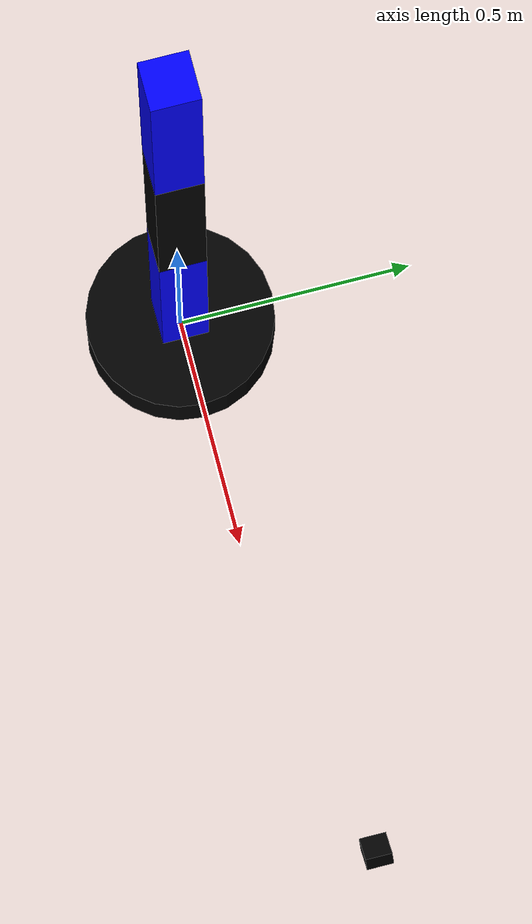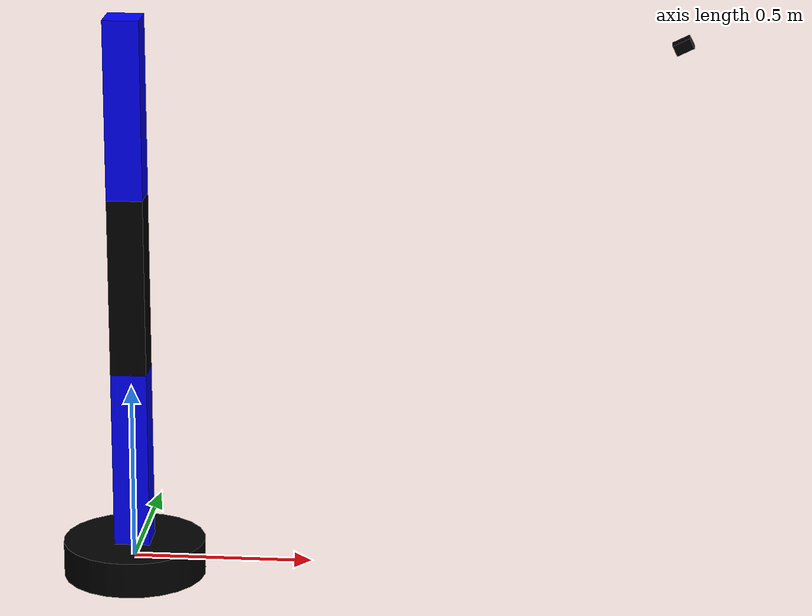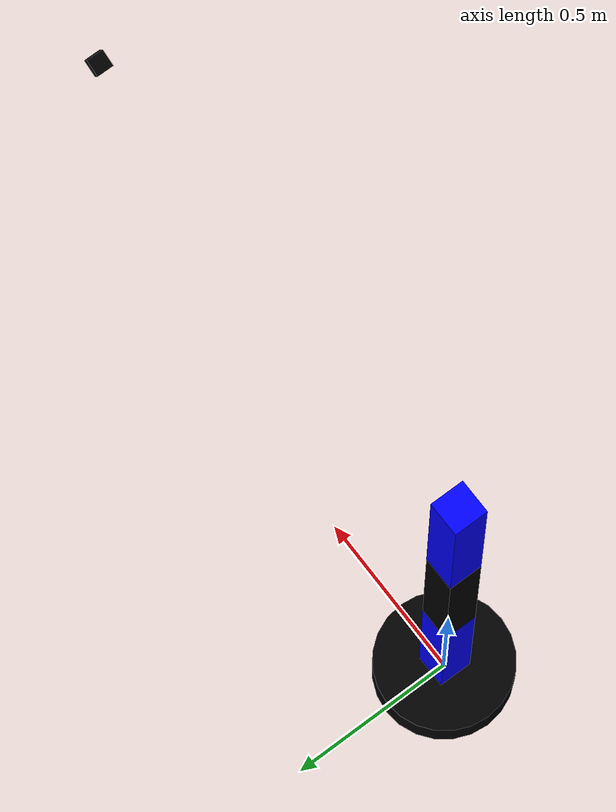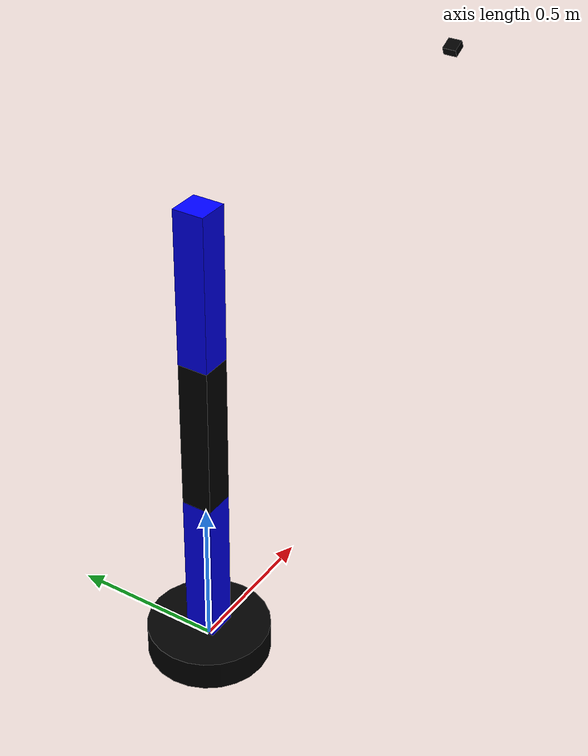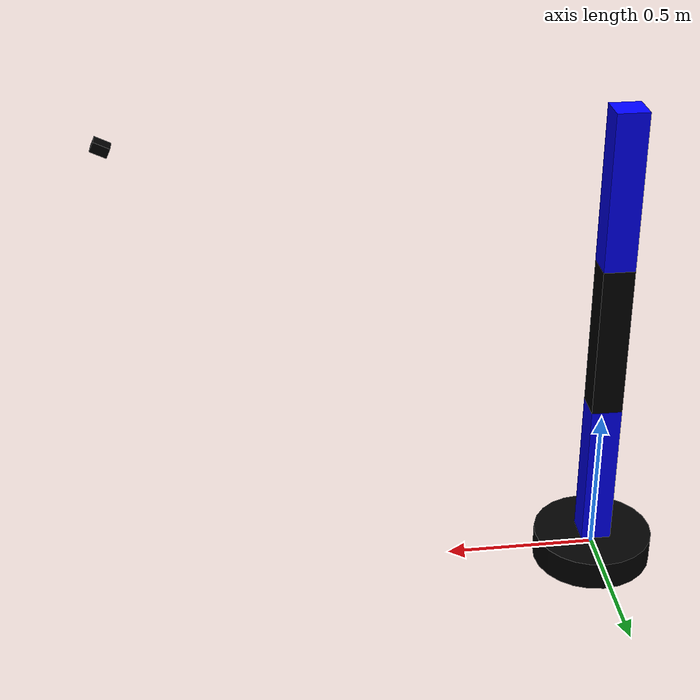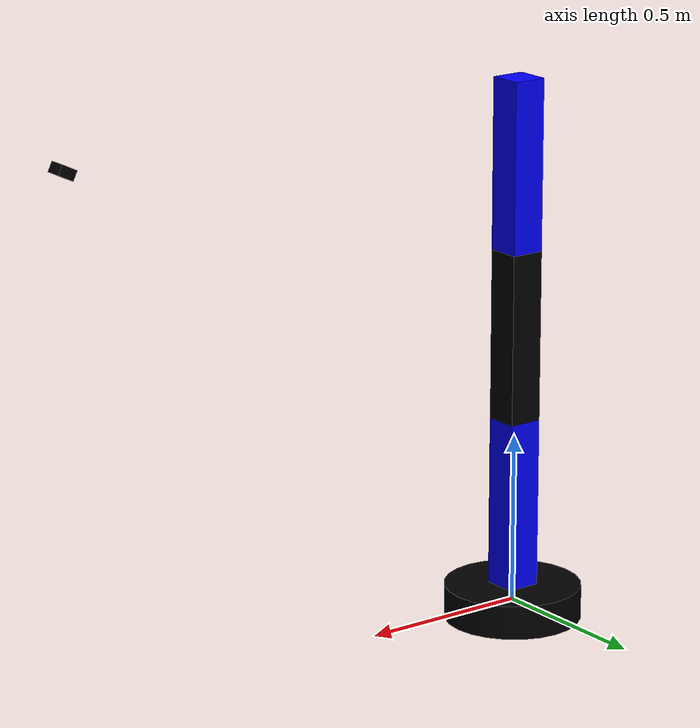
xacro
<?xml version="1.0"?>
<robot name="my_robot" xmlns:xacro="http://www.ros.org/wiki/xacro">

  <xacro:arg name="controllers_yaml" default="/tmp/arm_controllers.yaml"/>

  <!-- Materials -->
  <material name="black">
    <color rgba="0 0 0 1"/>
  </material>
  <material name="blue">
    <color rgba="0 0 1 1"/>
  </material>

  <!-- World link: fixes the arm base to the Gazebo world -->
  <link name="world"/>

  <!-- Base link -->
  <link name="base_link">
    <visual>
      <geometry>
        <cylinder radius="0.2" length="0.1"/>
      </geometry>
      <material name="black"/>
    </visual>
    <collision>
      <geometry>
        <cylinder radius="0.2" length="0.1"/>
      </geometry>
    </collision>
    <inertial>
      <mass value="1.0"/>
      <inertia ixx="0.1" iyy="0.1" izz="0.1" ixy="0.0" ixz="0.0" iyz="0.0"/>
    </inertial>
  </link>

  <joint name="world_joint" type="fixed">
    <parent link="world"/>
    <child link="base_link"/>
    <origin xyz="0 0 0" rpy="0 0 0"/>
  </joint>

  <!-- Link 1 -->
  <link name="link1">
    <visual>
      <geometry>
        <box size="0.1 0.1 0.5"/>
      </geometry>
      <origin xyz="0 0 0.25"/>
      <material name="blue"/>
    </visual>
    <collision>
      <geometry>
        <box size="0.1 0.1 0.5"/>
      </geometry>
      <origin xyz="0 0 0.25"/>
    </collision>
    <inertial>
      <mass value="0.5"/>
      <inertia ixx="0.02" iyy="0.02" izz="0.02" ixy="0" ixz="0" iyz="0"/>
    </inertial>
  </link>

  <!-- Joint1: revolute around Z -->
  <joint name="joint1" type="revolute">
    <parent link="base_link"/>
    <child link="link1"/>
    <origin xyz="0 0 0.05" rpy="0 0 0"/>
    <axis xyz="0 0 1"/>
    <limit lower="-3.14" upper="3.14" effort="5.0" velocity="1.0"/>
  </joint>

  <!-- Link 2 -->
  <link name="link2">
    <visual>
      <geometry>
        <box size="0.1 0.1 0.5"/>
      </geometry>
      <origin xyz="0 0 0.25"/>
      <material name="black"/>
    </visual>
    <collision>
      <geometry>
        <box size="0.1 0.1 0.5"/>
      </geometry>
      <origin xyz="0 0 0.25"/>
    </collision>
    <inertial>
      <mass value="0.5"/>
      <inertia ixx="0.02" iyy="0.02" izz="0.02" ixy="0" ixz="0" iyz="0"/>
    </inertial>
  </link>

  <!-- Joint2: revolute around Y -->
  <joint name="joint2" type="revolute">
    <parent link="link1"/>
    <child link="link2"/>
    <origin xyz="0 0 0.5" rpy="0 0 0"/>
    <axis xyz="0 1 0"/>
    <limit lower="-1.57" upper="1.57" effort="5.0" velocity="1.0"/>
  </joint>

  <!-- Link 3 -->
  <link name="link3">
    <visual>
      <geometry>
        <box size="0.1 0.1 0.5"/>
      </geometry>
      <origin xyz="0 0 0.25"/>
      <material name="blue"/>
    </visual>
    <collision>
      <geometry>
        <box size="0.1 0.1 0.5"/>
      </geometry>
      <origin xyz="0 0 0.25"/>
    </collision>
    <inertial>
      <mass value="0.5"/>
      <inertia ixx="0.02" iyy="0.02" izz="0.02" ixy="0" ixz="0" iyz="0"/>
    </inertial>
  </link>

  <!-- Joint3: revolute around Y -->
  <joint name="joint3" type="revolute">
    <parent link="link2"/>
    <child link="link3"/>
    <origin xyz="0 0 0.5" rpy="0 0 0"/>
    <axis xyz="0 1 0"/>
    <limit lower="-1.57" upper="1.57" effort="5.0" velocity="1.0"/>
  </joint>

  <link name="camera_link">
    <visual>
      <geometry>
        <box size="0.05 0.05 0.03"/>
      </geometry>
      <material name="black"/>
    </visual>
    <collision>
      <geometry>
        <box size="0.05 0.05 0.03"/>
      </geometry>
    </collision>
    <inertial>
      <mass value="0.1"/>
      <inertia ixx="0.0001" ixy="0" ixz="0"
               iyy="0.0001" iyz="0"
               izz="0.0001"/>
    </inertial>
  </link>

  <joint name="camera_joint" type="fixed">
    <parent link="world"/>
    <child link="camera_link"/>
    <origin xyz="1.5 0 1.5" rpy="0 0.46 3.14"/>
  </joint>

  <joint name="camera_optical_joint" type="fixed">
    <origin xyz="0 0 0" rpy="-1.5707 0 -1.5707"/>
    <parent link="camera_link"/>
    <child link="camera_link_optical"/>
  </joint>

  <link name="camera_link_optical"/>

  <gazebo reference="camera_link">
    <sensor name="camera" type="camera">
      <camera>
        <horizontal_fov>1.047</horizontal_fov>
        <image>
          <width>640</width>
          <height>480</height>
          <format>R8G8B8</format>
        </image>
        <clip>
          <near>0.1</near>
          <far>100</far>
        </clip>
        <optical_frame_id>camera_link_optical</optical_frame_id>
        <camera_info_topic>camera/camera_info</camera_info_topic>
      </camera>
      <always_on>1</always_on>
      <update_rate>30</update_rate>
      <visualize>true</visualize>
      <topic>camera/image</topic>
    </sensor>
  </gazebo>

  <!--  ros2_control hardware interface for Gazebo Sim        -->

  <ros2_control name="GazeboSimSystem" type="system">
    <hardware>
      <plugin>gz_ros2_control/GazeboSimSystem</plugin>
    </hardware>
    <joint name="joint1">
      <command_interface name="position"/>
      <state_interface name="position"/>
      <state_interface name="velocity"/>
    </joint>
    <joint name="joint2">
      <command_interface name="position"/>
      <state_interface name="position"/>
      <state_interface name="velocity"/>
    </joint>
    <joint name="joint3">
      <command_interface name="position"/>
      <state_interface name="position"/>
      <state_interface name="velocity"/>
    </joint>
  </ros2_control>

  <gazebo>
    <plugin filename="libgz_ros2_control-system.so"
            name="gz_ros2_control::GazeboSimROS2ControlPlugin">
      <parameters>$(arg controllers_yaml)</parameters>
    </plugin>
  </gazebo>

</robot>
